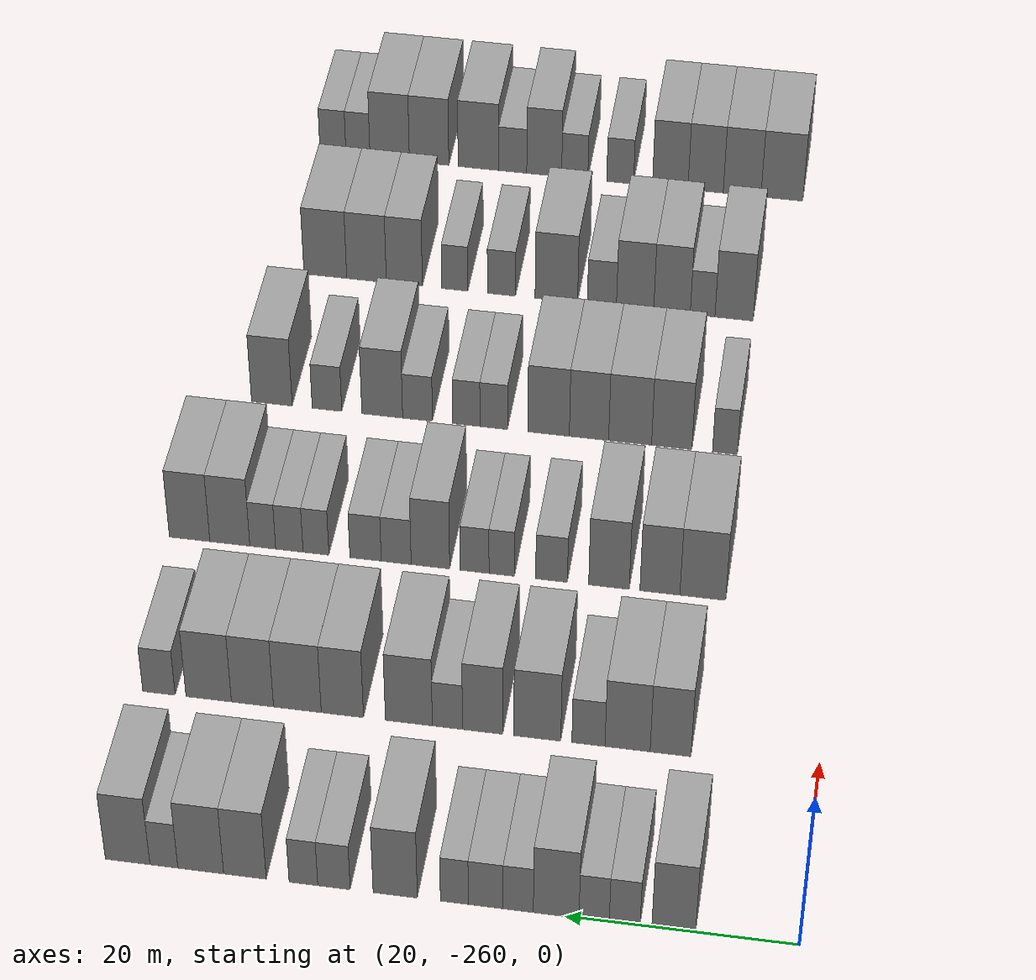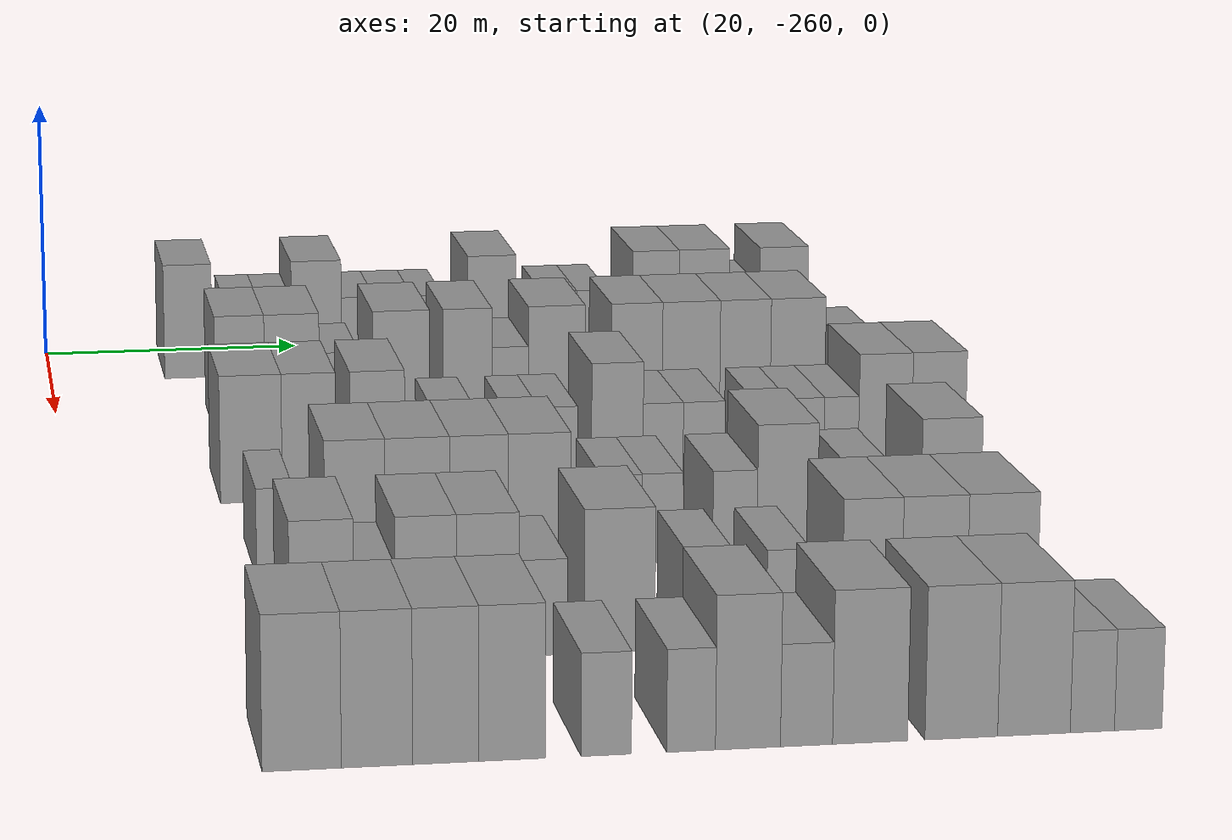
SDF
<sdf version="1.6">
 <world name="default">
  <model name="building_27">
   <static>1</static>
   <pose>25.0000 -249.2754 0 0.000000 0.000000 0.000000</pose>
   <link name="link">
    <pose>0 0 4.50 0 0 0</pose>
    <collision name="collision"><geometry><box><size>10.0000 3.7317 9.0000</size></box></geometry></collision>
    <visual name="visual">
     <cast_shadows>0</cast_shadows>
     <geometry><box><size>10.0000 3.7317 9.0000</size></box></geometry>
     <material>
      <script>
       <uri>model://grey_wall/materials/scripts</uri>
       <uri>model://grey_wall/materials/textures</uri>
       <name>vrc/grey_wall</name>
      </script>
     </material>
    </visual>
   </link>
  </model>
  <model name="building_28">
   <static>1</static>
   <pose>25.0000 -245.0887 0 0.000000 0.000000 0.000000</pose>
   <link name="link">
    <pose>0 0 3.00 0 0 0</pose>
    <collision name="collision"><geometry><box><size>10.0000 2.6416 6.0000</size></box></geometry></collision>
    <visual name="visual">
     <cast_shadows>0</cast_shadows>
     <geometry><box><size>10.0000 2.6416 6.0000</size></box></geometry>
     <material>
      <script>
       <uri>model://grey_wall/materials/scripts</uri>
       <uri>model://grey_wall/materials/textures</uri>
       <name>vrc/grey_wall</name>
      </script>
     </material>
    </visual>
   </link>
  </model>
  <model name="building_29">
   <static>1</static>
   <pose>25.0000 -242.4724 0 0.000000 0.000000 0.000000</pose>
   <link name="link">
    <pose>0 0 3.00 0 0 0</pose>
    <collision name="collision"><geometry><box><size>10.0000 2.5910 6.0000</size></box></geometry></collision>
    <visual name="visual">
     <cast_shadows>0</cast_shadows>
     <geometry><box><size>10.0000 2.5910 6.0000</size></box></geometry>
     <material>
      <script>
       <uri>model://grey_wall/materials/scripts</uri>
       <uri>model://grey_wall/materials/textures</uri>
       <name>vrc/grey_wall</name>
      </script>
     </material>
    </visual>
   </link>
  </model>
  <model name="building_30">
   <static>1</static>
   <pose>25.0000 -239.2148 0 0.000000 0.000000 0.000000</pose>
   <link name="link">
    <pose>0 0 4.50 0 0 0</pose>
    <collision name="collision"><geometry><box><size>10.0000 3.9242 9.0000</size></box></geometry></collision>
    <visual name="visual">
     <cast_shadows>0</cast_shadows>
     <geometry><box><size>10.0000 3.9242 9.0000</size></box></geometry>
     <material>
      <script>
       <uri>model://grey_wall/materials/scripts</uri>
       <uri>model://grey_wall/materials/textures</uri>
       <name>vrc/grey_wall</name>
      </script>
     </material>
    </visual>
   </link>
  </model>
  <model name="building_31">
   <static>1</static>
   <pose>25.0000 -235.9470 0 0.000000 0.000000 0.000000</pose>
   <link name="link">
    <pose>0 0 3.00 0 0 0</pose>
    <collision name="collision"><geometry><box><size>10.0000 2.6115 6.0000</size></box></geometry></collision>
    <visual name="visual">
     <cast_shadows>0</cast_shadows>
     <geometry><box><size>10.0000 2.6115 6.0000</size></box></geometry>
     <material>
      <script>
       <uri>model://grey_wall/materials/scripts</uri>
       <uri>model://grey_wall/materials/textures</uri>
       <name>vrc/grey_wall</name>
      </script>
     </material>
    </visual>
   </link>
  </model>
  <model name="building_32">
   <static>1</static>
   <pose>25.0000 -233.1449 0 0.000000 0.000000 0.000000</pose>
   <link name="link">
    <pose>0 0 3.00 0 0 0</pose>
    <collision name="collision"><geometry><box><size>10.0000 2.9928 6.0000</size></box></geometry></collision>
    <visual name="visual">
     <cast_shadows>0</cast_shadows>
     <geometry><box><size>10.0000 2.9928 6.0000</size></box></geometry>
     <material>
      <script>
       <uri>model://grey_wall/materials/scripts</uri>
       <uri>model://grey_wall/materials/textures</uri>
       <name>vrc/grey_wall</name>
      </script>
     </material>
    </visual>
   </link>
  </model>
  <model name="building_33">
   <static>1</static>
   <pose>25.0000 -230.4417 0 0.000000 0.000000 0.000000</pose>
   <link name="link">
    <pose>0 0 3.00 0 0 0</pose>
    <collision name="collision"><geometry><box><size>10.0000 2.4134 6.0000</size></box></geometry></collision>
    <visual name="visual">
     <cast_shadows>0</cast_shadows>
     <geometry><box><size>10.0000 2.4134 6.0000</size></box></geometry>
     <material>
      <script>
       <uri>model://grey_wall/materials/scripts</uri>
       <uri>model://grey_wall/materials/textures</uri>
       <name>vrc/grey_wall</name>
      </script>
     </material>
    </visual>
   </link>
  </model>
  <model name="building_34">
   <static>1</static>
   <pose>25.0000 -225.3167 0 0.000000 0.000000 0.000000</pose>
   <link name="link">
    <pose>0 0 4.50 0 0 0</pose>
    <collision name="collision"><geometry><box><size>10.0000 3.8365 9.0000</size></box></geometry></collision>
    <visual name="visual">
     <cast_shadows>0</cast_shadows>
     <geometry><box><size>10.0000 3.8365 9.0000</size></box></geometry>
     <material>
      <script>
       <uri>model://grey_wall/materials/scripts</uri>
       <uri>model://grey_wall/materials/textures</uri>
       <name>vrc/grey_wall</name>
      </script>
     </material>
    </visual>
   </link>
  </model>
  <model name="building_35">
   <static>1</static>
   <pose>25.0000 -219.9875 0 0.000000 0.000000 0.000000</pose>
   <link name="link">
    <pose>0 0 3.00 0 0 0</pose>
    <collision name="collision"><geometry><box><size>10.0000 2.8219 6.0000</size></box></geometry></collision>
    <visual name="visual">
     <cast_shadows>0</cast_shadows>
     <geometry><box><size>10.0000 2.8219 6.0000</size></box></geometry>
     <material>
      <script>
       <uri>model://grey_wall/materials/scripts</uri>
       <uri>model://grey_wall/materials/textures</uri>
       <name>vrc/grey_wall</name>
      </script>
     </material>
    </visual>
   </link>
  </model>
  <model name="building_36">
   <static>1</static>
   <pose>25.0000 -217.3249 0 0.000000 0.000000 0.000000</pose>
   <link name="link">
    <pose>0 0 3.00 0 0 0</pose>
    <collision name="collision"><geometry><box><size>10.0000 2.5034 6.0000</size></box></geometry></collision>
    <visual name="visual">
     <cast_shadows>0</cast_shadows>
     <geometry><box><size>10.0000 2.5034 6.0000</size></box></geometry>
     <material>
      <script>
       <uri>model://grey_wall/materials/scripts</uri>
       <uri>model://grey_wall/materials/textures</uri>
       <name>vrc/grey_wall</name>
      </script>
     </material>
    </visual>
   </link>
  </model>
  <model name="building_37">
   <static>1</static>
   <pose>25.0000 -212.2040 0 0.000000 0.000000 0.000000</pose>
   <link name="link">
    <pose>0 0 4.50 0 0 0</pose>
    <collision name="collision"><geometry><box><size>10.0000 3.7382 9.0000</size></box></geometry></collision>
    <visual name="visual">
     <cast_shadows>0</cast_shadows>
     <geometry><box><size>10.0000 3.7382 9.0000</size></box></geometry>
     <material>
      <script>
       <uri>model://grey_wall/materials/scripts</uri>
       <uri>model://grey_wall/materials/textures</uri>
       <name>vrc/grey_wall</name>
      </script>
     </material>
    </visual>
   </link>
  </model>
  <model name="building_38">
   <static>1</static>
   <pose>25.0000 -208.3201 0 0.000000 0.000000 0.000000</pose>
   <link name="link">
    <pose>0 0 4.50 0 0 0</pose>
    <collision name="collision"><geometry><box><size>10.0000 4.0297 9.0000</size></box></geometry></collision>
    <visual name="visual">
     <cast_shadows>0</cast_shadows>
     <geometry><box><size>10.0000 4.0297 9.0000</size></box></geometry>
     <material>
      <script>
       <uri>model://grey_wall/materials/scripts</uri>
       <uri>model://grey_wall/materials/textures</uri>
       <name>vrc/grey_wall</name>
      </script>
     </material>
    </visual>
   </link>
  </model>
  <model name="building_39">
   <static>1</static>
   <pose>25.0000 -205.0746 0 0.000000 0.000000 0.000000</pose>
   <link name="link">
    <pose>0 0 3.00 0 0 0</pose>
    <collision name="collision"><geometry><box><size>10.0000 2.4613 6.0000</size></box></geometry></collision>
    <visual name="visual">
     <cast_shadows>0</cast_shadows>
     <geometry><box><size>10.0000 2.4613 6.0000</size></box></geometry>
     <material>
      <script>
       <uri>model://grey_wall/materials/scripts</uri>
       <uri>model://grey_wall/materials/textures</uri>
       <name>vrc/grey_wall</name>
      </script>
     </material>
    </visual>
   </link>
  </model>
  <model name="building_40">
   <static>1</static>
   <pose>25.0000 -201.8766 0 0.000000 0.000000 0.000000</pose>
   <link name="link">
    <pose>0 0 4.50 0 0 0</pose>
    <collision name="collision"><geometry><box><size>10.0000 3.9346 9.0000</size></box></geometry></collision>
    <visual name="visual">
     <cast_shadows>0</cast_shadows>
     <geometry><box><size>10.0000 3.9346 9.0000</size></box></geometry>
     <material>
      <script>
       <uri>model://grey_wall/materials/scripts</uri>
       <uri>model://grey_wall/materials/textures</uri>
       <name>vrc/grey_wall</name>
      </script>
     </material>
    </visual>
   </link>
  </model>
  <model name="building_202">
   <static>1</static>
   <pose>44.0000 -246.7965 0 0.000000 0.000000 0.000000</pose>
   <link name="link">
    <pose>0 0 4.50 0 0 0</pose>
    <collision name="collision"><geometry><box><size>10.0000 3.6522 9.0000</size></box></geometry></collision>
    <visual name="visual">
     <cast_shadows>0</cast_shadows>
     <geometry><box><size>10.0000 3.6522 9.0000</size></box></geometry>
     <material>
      <script>
       <uri>model://grey_wall/materials/scripts</uri>
       <uri>model://grey_wall/materials/textures</uri>
       <name>vrc/grey_wall</name>
      </script>
     </material>
    </visual>
   </link>
  </model>
  <model name="building_203">
   <static>1</static>
   <pose>44.0000 -242.9457 0 0.000000 0.000000 0.000000</pose>
   <link name="link">
    <pose>0 0 4.50 0 0 0</pose>
    <collision name="collision"><geometry><box><size>10.0000 4.0494 9.0000</size></box></geometry></collision>
    <visual name="visual">
     <cast_shadows>0</cast_shadows>
     <geometry><box><size>10.0000 4.0494 9.0000</size></box></geometry>
     <material>
      <script>
       <uri>model://grey_wall/materials/scripts</uri>
       <uri>model://grey_wall/materials/textures</uri>
       <name>vrc/grey_wall</name>
      </script>
     </material>
    </visual>
   </link>
  </model>
  <model name="building_204">
   <static>1</static>
   <pose>44.0000 -239.4371 0 0.000000 0.000000 0.000000</pose>
   <link name="link">
    <pose>0 0 3.00 0 0 0</pose>
    <collision name="collision"><geometry><box><size>10.0000 2.9678 6.0000</size></box></geometry></collision>
    <visual name="visual">
     <cast_shadows>0</cast_shadows>
     <geometry><box><size>10.0000 2.9678 6.0000</size></box></geometry>
     <material>
      <script>
       <uri>model://grey_wall/materials/scripts</uri>
       <uri>model://grey_wall/materials/textures</uri>
       <name>vrc/grey_wall</name>
      </script>
     </material>
    </visual>
   </link>
  </model>
  <model name="building_205">
   <static>1</static>
   <pose>44.0000 -234.8391 0 0.000000 0.000000 0.000000</pose>
   <link name="link">
    <pose>0 0 4.50 0 0 0</pose>
    <collision name="collision"><geometry><box><size>10.0000 4.2283 9.0000</size></box></geometry></collision>
    <visual name="visual">
     <cast_shadows>0</cast_shadows>
     <geometry><box><size>10.0000 4.2283 9.0000</size></box></geometry>
     <material>
      <script>
       <uri>model://grey_wall/materials/scripts</uri>
       <uri>model://grey_wall/materials/textures</uri>
       <name>vrc/grey_wall</name>
      </script>
     </material>
    </visual>
   </link>
  </model>
  <model name="building_206">
   <static>1</static>
   <pose>44.0000 -229.9045 0 0.000000 0.000000 0.000000</pose>
   <link name="link">
    <pose>0 0 4.50 0 0 0</pose>
    <collision name="collision"><geometry><box><size>10.0000 3.6408 9.0000</size></box></geometry></collision>
    <visual name="visual">
     <cast_shadows>0</cast_shadows>
     <geometry><box><size>10.0000 3.6408 9.0000</size></box></geometry>
     <material>
      <script>
       <uri>model://grey_wall/materials/scripts</uri>
       <uri>model://grey_wall/materials/textures</uri>
       <name>vrc/grey_wall</name>
      </script>
     </material>
    </visual>
   </link>
  </model>
  <model name="building_207">
   <static>1</static>
   <pose>44.0000 -226.7147 0 0.000000 0.000000 0.000000</pose>
   <link name="link">
    <pose>0 0 3.00 0 0 0</pose>
    <collision name="collision"><geometry><box><size>10.0000 2.7388 6.0000</size></box></geometry></collision>
    <visual name="visual">
     <cast_shadows>0</cast_shadows>
     <geometry><box><size>10.0000 2.7388 6.0000</size></box></geometry>
     <material>
      <script>
       <uri>model://grey_wall/materials/scripts</uri>
       <uri>model://grey_wall/materials/textures</uri>
       <name>vrc/grey_wall</name>
      </script>
     </material>
    </visual>
   </link>
  </model>
  <model name="building_208">
   <static>1</static>
   <pose>44.0000 -223.2158 0 0.000000 0.000000 0.000000</pose>
   <link name="link">
    <pose>0 0 4.50 0 0 0</pose>
    <collision name="collision"><geometry><box><size>10.0000 4.2590 9.0000</size></box></geometry></collision>
    <visual name="visual">
     <cast_shadows>0</cast_shadows>
     <geometry><box><size>10.0000 4.2590 9.0000</size></box></geometry>
     <material>
      <script>
       <uri>model://grey_wall/materials/scripts</uri>
       <uri>model://grey_wall/materials/textures</uri>
       <name>vrc/grey_wall</name>
      </script>
     </material>
    </visual>
   </link>
  </model>
  <model name="building_209">
   <static>1</static>
   <pose>44.0000 -217.1549 0 0.000000 0.000000 0.000000</pose>
   <link name="link">
    <pose>0 0 4.50 0 0 0</pose>
    <collision name="collision"><geometry><box><size>10.0000 3.8627 9.0000</size></box></geometry></collision>
    <visual name="visual">
     <cast_shadows>0</cast_shadows>
     <geometry><box><size>10.0000 3.8627 9.0000</size></box></geometry>
     <material>
      <script>
       <uri>model://grey_wall/materials/scripts</uri>
       <uri>model://grey_wall/materials/textures</uri>
       <name>vrc/grey_wall</name>
      </script>
     </material>
    </visual>
   </link>
  </model>
  <model name="building_210">
   <static>1</static>
   <pose>44.0000 -213.0387 0 0.000000 0.000000 0.000000</pose>
   <link name="link">
    <pose>0 0 4.50 0 0 0</pose>
    <collision name="collision"><geometry><box><size>10.0000 4.3696 9.0000</size></box></geometry></collision>
    <visual name="visual">
     <cast_shadows>0</cast_shadows>
     <geometry><box><size>10.0000 4.3696 9.0000</size></box></geometry>
     <material>
      <script>
       <uri>model://grey_wall/materials/scripts</uri>
       <uri>model://grey_wall/materials/textures</uri>
       <name>vrc/grey_wall</name>
      </script>
     </material>
    </visual>
   </link>
  </model>
  <model name="building_211">
   <static>1</static>
   <pose>44.0000 -208.9217 0 0.000000 0.000000 0.000000</pose>
   <link name="link">
    <pose>0 0 4.50 0 0 0</pose>
    <collision name="collision"><geometry><box><size>10.0000 3.8645 9.0000</size></box></geometry></collision>
    <visual name="visual">
     <cast_shadows>0</cast_shadows>
     <geometry><box><size>10.0000 3.8645 9.0000</size></box></geometry>
     <material>
      <script>
       <uri>model://grey_wall/materials/scripts</uri>
       <uri>model://grey_wall/materials/textures</uri>
       <name>vrc/grey_wall</name>
      </script>
     </material>
    </visual>
   </link>
  </model>
  <model name="building_212">
   <static>1</static>
   <pose>44.0000 -204.8992 0 0.000000 0.000000 0.000000</pose>
   <link name="link">
    <pose>0 0 4.50 0 0 0</pose>
    <collision name="collision"><geometry><box><size>10.0000 4.1804 9.0000</size></box></geometry></collision>
    <visual name="visual">
     <cast_shadows>0</cast_shadows>
     <geometry><box><size>10.0000 4.1804 9.0000</size></box></geometry>
     <material>
      <script>
       <uri>model://grey_wall/materials/scripts</uri>
       <uri>model://grey_wall/materials/textures</uri>
       <name>vrc/grey_wall</name>
      </script>
     </material>
    </visual>
   </link>
  </model>
  <model name="building_213">
   <static>1</static>
   <pose>44.0000 -200.3142 0 0.000000 0.000000 0.000000</pose>
   <link name="link">
    <pose>0 0 3.00 0 0 0</pose>
    <collision name="collision"><geometry><box><size>10.0000 2.9898 6.0000</size></box></geometry></collision>
    <visual name="visual">
     <cast_shadows>0</cast_shadows>
     <geometry><box><size>10.0000 2.9898 6.0000</size></box></geometry>
     <material>
      <script>
       <uri>model://grey_wall/materials/scripts</uri>
       <uri>model://grey_wall/materials/textures</uri>
       <name>vrc/grey_wall</name>
      </script>
     </material>
    </visual>
   </link>
  </model>
  <model name="building_367">
   <static>1</static>
   <pose>63.0000 -247.5992 0 0.000000 0.000000 0.000000</pose>
   <link name="link">
    <pose>0 0 4.50 0 0 0</pose>
    <collision name="collision"><geometry><box><size>10.0000 4.2752 9.0000</size></box></geometry></collision>
    <visual name="visual">
     <cast_shadows>0</cast_shadows>
     <geometry><box><size>10.0000 4.2752 9.0000</size></box></geometry>
     <material>
      <script>
       <uri>model://grey_wall/materials/scripts</uri>
       <uri>model://grey_wall/materials/textures</uri>
       <name>vrc/grey_wall</name>
      </script>
     </material>
    </visual>
   </link>
  </model>
  <model name="building_368">
   <static>1</static>
   <pose>63.0000 -243.5945 0 0.000000 0.000000 0.000000</pose>
   <link name="link">
    <pose>0 0 4.50 0 0 0</pose>
    <collision name="collision"><geometry><box><size>10.0000 3.7342 9.0000</size></box></geometry></collision>
    <visual name="visual">
     <cast_shadows>0</cast_shadows>
     <geometry><box><size>10.0000 3.7342 9.0000</size></box></geometry>
     <material>
      <script>
       <uri>model://grey_wall/materials/scripts</uri>
       <uri>model://grey_wall/materials/textures</uri>
       <name>vrc/grey_wall</name>
      </script>
     </material>
    </visual>
   </link>
  </model>
  <model name="building_369">
   <static>1</static>
   <pose>63.0000 -238.8226 0 0.000000 0.000000 0.000000</pose>
   <link name="link">
    <pose>0 0 4.50 0 0 0</pose>
    <collision name="collision"><geometry><box><size>10.0000 3.8095 9.0000</size></box></geometry></collision>
    <visual name="visual">
     <cast_shadows>0</cast_shadows>
     <geometry><box><size>10.0000 3.8095 9.0000</size></box></geometry>
     <material>
      <script>
       <uri>model://grey_wall/materials/scripts</uri>
       <uri>model://grey_wall/materials/textures</uri>
       <name>vrc/grey_wall</name>
      </script>
     </material>
    </visual>
   </link>
  </model>
  <model name="building_370">
   <static>1</static>
   <pose>63.0000 -233.4251 0 0.000000 0.000000 0.000000</pose>
   <link name="link">
    <pose>0 0 3.00 0 0 0</pose>
    <collision name="collision"><geometry><box><size>10.0000 2.9855 6.0000</size></box></geometry></collision>
    <visual name="visual">
     <cast_shadows>0</cast_shadows>
     <geometry><box><size>10.0000 2.9855 6.0000</size></box></geometry>
     <material>
      <script>
       <uri>model://grey_wall/materials/scripts</uri>
       <uri>model://grey_wall/materials/textures</uri>
       <name>vrc/grey_wall</name>
      </script>
     </material>
    </visual>
   </link>
  </model>
  <model name="building_371">
   <static>1</static>
   <pose>63.0000 -228.7287 0 0.000000 0.000000 0.000000</pose>
   <link name="link">
    <pose>0 0 3.00 0 0 0</pose>
    <collision name="collision"><geometry><box><size>10.0000 2.4073 6.0000</size></box></geometry></collision>
    <visual name="visual">
     <cast_shadows>0</cast_shadows>
     <geometry><box><size>10.0000 2.4073 6.0000</size></box></geometry>
     <material>
      <script>
       <uri>model://grey_wall/materials/scripts</uri>
       <uri>model://grey_wall/materials/textures</uri>
       <name>vrc/grey_wall</name>
      </script>
     </material>
    </visual>
   </link>
  </model>
  <model name="building_372">
   <static>1</static>
   <pose>63.0000 -226.1645 0 0.000000 0.000000 0.000000</pose>
   <link name="link">
    <pose>0 0 3.00 0 0 0</pose>
    <collision name="collision"><geometry><box><size>10.0000 2.7211 6.0000</size></box></geometry></collision>
    <visual name="visual">
     <cast_shadows>0</cast_shadows>
     <geometry><box><size>10.0000 2.7211 6.0000</size></box></geometry>
     <material>
      <script>
       <uri>model://grey_wall/materials/scripts</uri>
       <uri>model://grey_wall/materials/textures</uri>
       <name>vrc/grey_wall</name>
      </script>
     </material>
    </visual>
   </link>
  </model>
  <model name="building_373">
   <static>1</static>
   <pose>63.0000 -221.9766 0 0.000000 0.000000 0.000000</pose>
   <link name="link">
    <pose>0 0 4.50 0 0 0</pose>
    <collision name="collision"><geometry><box><size>10.0000 3.6547 9.0000</size></box></geometry></collision>
    <visual name="visual">
     <cast_shadows>0</cast_shadows>
     <geometry><box><size>10.0000 3.6547 9.0000</size></box></geometry>
     <material>
      <script>
       <uri>model://grey_wall/materials/scripts</uri>
       <uri>model://grey_wall/materials/textures</uri>
       <name>vrc/grey_wall</name>
      </script>
     </material>
    </visual>
   </link>
  </model>
  <model name="building_374">
   <static>1</static>
   <pose>63.0000 -218.7250 0 0.000000 0.000000 0.000000</pose>
   <link name="link">
    <pose>0 0 3.00 0 0 0</pose>
    <collision name="collision"><geometry><box><size>10.0000 2.8484 6.0000</size></box></geometry></collision>
    <visual name="visual">
     <cast_shadows>0</cast_shadows>
     <geometry><box><size>10.0000 2.8484 6.0000</size></box></geometry>
     <material>
      <script>
       <uri>model://grey_wall/materials/scripts</uri>
       <uri>model://grey_wall/materials/textures</uri>
       <name>vrc/grey_wall</name>
      </script>
     </material>
    </visual>
   </link>
  </model>
  <model name="building_375">
   <static>1</static>
   <pose>63.0000 -215.8067 0 0.000000 0.000000 0.000000</pose>
   <link name="link">
    <pose>0 0 3.00 0 0 0</pose>
    <collision name="collision"><geometry><box><size>10.0000 2.9884 6.0000</size></box></geometry></collision>
    <visual name="visual">
     <cast_shadows>0</cast_shadows>
     <geometry><box><size>10.0000 2.9884 6.0000</size></box></geometry>
     <material>
      <script>
       <uri>model://grey_wall/materials/scripts</uri>
       <uri>model://grey_wall/materials/textures</uri>
       <name>vrc/grey_wall</name>
      </script>
     </material>
    </visual>
   </link>
  </model>
  <model name="building_376">
   <static>1</static>
   <pose>63.0000 -211.0759 0 0.000000 0.000000 0.000000</pose>
   <link name="link">
    <pose>0 0 3.00 0 0 0</pose>
    <collision name="collision"><geometry><box><size>10.0000 2.4731 6.0000</size></box></geometry></collision>
    <visual name="visual">
     <cast_shadows>0</cast_shadows>
     <geometry><box><size>10.0000 2.4731 6.0000</size></box></geometry>
     <material>
      <script>
       <uri>model://grey_wall/materials/scripts</uri>
       <uri>model://grey_wall/materials/textures</uri>
       <name>vrc/grey_wall</name>
      </script>
     </material>
    </visual>
   </link>
  </model>
  <model name="building_377">
   <static>1</static>
   <pose>63.0000 -208.5263 0 0.000000 0.000000 0.000000</pose>
   <link name="link">
    <pose>0 0 3.00 0 0 0</pose>
    <collision name="collision"><geometry><box><size>10.0000 2.6262 6.0000</size></box></geometry></collision>
    <visual name="visual">
     <cast_shadows>0</cast_shadows>
     <geometry><box><size>10.0000 2.6262 6.0000</size></box></geometry>
     <material>
      <script>
       <uri>model://grey_wall/materials/scripts</uri>
       <uri>model://grey_wall/materials/textures</uri>
       <name>vrc/grey_wall</name>
      </script>
     </material>
    </visual>
   </link>
  </model>
  <model name="building_378">
   <static>1</static>
   <pose>63.0000 -205.9750 0 0.000000 0.000000 0.000000</pose>
   <link name="link">
    <pose>0 0 3.00 0 0 0</pose>
    <collision name="collision"><geometry><box><size>10.0000 2.4762 6.0000</size></box></geometry></collision>
    <visual name="visual">
     <cast_shadows>0</cast_shadows>
     <geometry><box><size>10.0000 2.4762 6.0000</size></box></geometry>
     <material>
      <script>
       <uri>model://grey_wall/materials/scripts</uri>
       <uri>model://grey_wall/materials/textures</uri>
       <name>vrc/grey_wall</name>
      </script>
     </material>
    </visual>
   </link>
  </model>
  <model name="building_379">
   <static>1</static>
   <pose>63.0000 -202.8135 0 0.000000 0.000000 0.000000</pose>
   <link name="link">
    <pose>0 0 4.50 0 0 0</pose>
    <collision name="collision"><geometry><box><size>10.0000 3.8467 9.0000</size></box></geometry></collision>
    <visual name="visual">
     <cast_shadows>0</cast_shadows>
     <geometry><box><size>10.0000 3.8467 9.0000</size></box></geometry>
     <material>
      <script>
       <uri>model://grey_wall/materials/scripts</uri>
       <uri>model://grey_wall/materials/textures</uri>
       <name>vrc/grey_wall</name>
      </script>
     </material>
    </visual>
   </link>
  </model>
  <model name="building_380">
   <static>1</static>
   <pose>63.0000 -198.9438 0 0.000000 0.000000 0.000000</pose>
   <link name="link">
    <pose>0 0 4.50 0 0 0</pose>
    <collision name="collision"><geometry><box><size>10.0000 3.8928 9.0000</size></box></geometry></collision>
    <visual name="visual">
     <cast_shadows>0</cast_shadows>
     <geometry><box><size>10.0000 3.8928 9.0000</size></box></geometry>
     <material>
      <script>
       <uri>model://grey_wall/materials/scripts</uri>
       <uri>model://grey_wall/materials/textures</uri>
       <name>vrc/grey_wall</name>
      </script>
     </material>
    </visual>
   </link>
  </model>
  <model name="building_546">
   <static>1</static>
   <pose>82.0000 -247.6705 0 0.000000 0.000000 0.000000</pose>
   <link name="link">
    <pose>0 0 3.00 0 0 0</pose>
    <collision name="collision"><geometry><box><size>10.0000 2.4222 6.0000</size></box></geometry></collision>
    <visual name="visual">
     <cast_shadows>0</cast_shadows>
     <geometry><box><size>10.0000 2.4222 6.0000</size></box></geometry>
     <material>
      <script>
       <uri>model://grey_wall/materials/scripts</uri>
       <uri>model://grey_wall/materials/textures</uri>
       <name>vrc/grey_wall</name>
      </script>
     </material>
    </visual>
   </link>
  </model>
  <model name="building_547">
   <static>1</static>
   <pose>82.0000 -242.4932 0 0.000000 0.000000 0.000000</pose>
   <link name="link">
    <pose>0 0 4.50 0 0 0</pose>
    <collision name="collision"><geometry><box><size>10.0000 3.9324 9.0000</size></box></geometry></collision>
    <visual name="visual">
     <cast_shadows>0</cast_shadows>
     <geometry><box><size>10.0000 3.9324 9.0000</size></box></geometry>
     <material>
      <script>
       <uri>model://grey_wall/materials/scripts</uri>
       <uri>model://grey_wall/materials/textures</uri>
       <name>vrc/grey_wall</name>
      </script>
     </material>
    </visual>
   </link>
  </model>
  <model name="building_548">
   <static>1</static>
   <pose>82.0000 -238.4257 0 0.000000 0.000000 0.000000</pose>
   <link name="link">
    <pose>0 0 4.50 0 0 0</pose>
    <collision name="collision"><geometry><box><size>10.0000 4.2026 9.0000</size></box></geometry></collision>
    <visual name="visual">
     <cast_shadows>0</cast_shadows>
     <geometry><box><size>10.0000 4.2026 9.0000</size></box></geometry>
     <material>
      <script>
       <uri>model://grey_wall/materials/scripts</uri>
       <uri>model://grey_wall/materials/textures</uri>
       <name>vrc/grey_wall</name>
      </script>
     </material>
    </visual>
   </link>
  </model>
  <model name="building_549">
   <static>1</static>
   <pose>82.0000 -234.3999 0 0.000000 0.000000 0.000000</pose>
   <link name="link">
    <pose>0 0 4.50 0 0 0</pose>
    <collision name="collision"><geometry><box><size>10.0000 3.8489 9.0000</size></box></geometry></collision>
    <visual name="visual">
     <cast_shadows>0</cast_shadows>
     <geometry><box><size>10.0000 3.8489 9.0000</size></box></geometry>
     <material>
      <script>
       <uri>model://grey_wall/materials/scripts</uri>
       <uri>model://grey_wall/materials/textures</uri>
       <name>vrc/grey_wall</name>
      </script>
     </material>
    </visual>
   </link>
  </model>
  <model name="building_550">
   <static>1</static>
   <pose>82.0000 -230.4365 0 0.000000 0.000000 0.000000</pose>
   <link name="link">
    <pose>0 0 4.50 0 0 0</pose>
    <collision name="collision"><geometry><box><size>10.0000 4.0778 9.0000</size></box></geometry></collision>
    <visual name="visual">
     <cast_shadows>0</cast_shadows>
     <geometry><box><size>10.0000 4.0778 9.0000</size></box></geometry>
     <material>
      <script>
       <uri>model://grey_wall/materials/scripts</uri>
       <uri>model://grey_wall/materials/textures</uri>
       <name>vrc/grey_wall</name>
      </script>
     </material>
    </visual>
   </link>
  </model>
  <model name="building_551">
   <static>1</static>
   <pose>82.0000 -225.0351 0 0.000000 0.000000 0.000000</pose>
   <link name="link">
    <pose>0 0 3.00 0 0 0</pose>
    <collision name="collision"><geometry><box><size>10.0000 2.7250 6.0000</size></box></geometry></collision>
    <visual name="visual">
     <cast_shadows>0</cast_shadows>
     <geometry><box><size>10.0000 2.7250 6.0000</size></box></geometry>
     <material>
      <script>
       <uri>model://grey_wall/materials/scripts</uri>
       <uri>model://grey_wall/materials/textures</uri>
       <name>vrc/grey_wall</name>
      </script>
     </material>
    </visual>
   </link>
  </model>
  <model name="building_552">
   <static>1</static>
   <pose>82.0000 -222.3273 0 0.000000 0.000000 0.000000</pose>
   <link name="link">
    <pose>0 0 3.00 0 0 0</pose>
    <collision name="collision"><geometry><box><size>10.0000 2.6908 6.0000</size></box></geometry></collision>
    <visual name="visual">
     <cast_shadows>0</cast_shadows>
     <geometry><box><size>10.0000 2.6908 6.0000</size></box></geometry>
     <material>
      <script>
       <uri>model://grey_wall/materials/scripts</uri>
       <uri>model://grey_wall/materials/textures</uri>
       <name>vrc/grey_wall</name>
      </script>
     </material>
    </visual>
   </link>
  </model>
  <model name="building_553">
   <static>1</static>
   <pose>82.0000 -217.5042 0 0.000000 0.000000 0.000000</pose>
   <link name="link">
    <pose>0 0 3.00 0 0 0</pose>
    <collision name="collision"><geometry><box><size>10.0000 2.9554 6.0000</size></box></geometry></collision>
    <visual name="visual">
     <cast_shadows>0</cast_shadows>
     <geometry><box><size>10.0000 2.9554 6.0000</size></box></geometry>
     <material>
      <script>
       <uri>model://grey_wall/materials/scripts</uri>
       <uri>model://grey_wall/materials/textures</uri>
       <name>vrc/grey_wall</name>
      </script>
     </material>
    </visual>
   </link>
  </model>
  <model name="building_554">
   <static>1</static>
   <pose>82.0000 -214.0004 0 0.000000 0.000000 0.000000</pose>
   <link name="link">
    <pose>0 0 4.50 0 0 0</pose>
    <collision name="collision"><geometry><box><size>10.0000 4.0522 9.0000</size></box></geometry></collision>
    <visual name="visual">
     <cast_shadows>0</cast_shadows>
     <geometry><box><size>10.0000 4.0522 9.0000</size></box></geometry>
     <material>
      <script>
       <uri>model://grey_wall/materials/scripts</uri>
       <uri>model://grey_wall/materials/textures</uri>
       <name>vrc/grey_wall</name>
      </script>
     </material>
    </visual>
   </link>
  </model>
  <model name="building_555">
   <static>1</static>
   <pose>82.0000 -208.5017 0 0.000000 0.000000 0.000000</pose>
   <link name="link">
    <pose>0 0 3.00 0 0 0</pose>
    <collision name="collision"><geometry><box><size>10.0000 2.9451 6.0000</size></box></geometry></collision>
    <visual name="visual">
     <cast_shadows>0</cast_shadows>
     <geometry><box><size>10.0000 2.9451 6.0000</size></box></geometry>
     <material>
      <script>
       <uri>model://grey_wall/materials/scripts</uri>
       <uri>model://grey_wall/materials/textures</uri>
       <name>vrc/grey_wall</name>
      </script>
     </material>
    </visual>
   </link>
  </model>
  <model name="building_556">
   <static>1</static>
   <pose>82.0000 -202.9977 0 0.000000 0.000000 0.000000</pose>
   <link name="link">
    <pose>0 0 4.50 0 0 0</pose>
    <collision name="collision"><geometry><box><size>10.0000 4.0630 9.0000</size></box></geometry></collision>
    <visual name="visual">
     <cast_shadows>0</cast_shadows>
     <geometry><box><size>10.0000 4.0630 9.0000</size></box></geometry>
     <material>
      <script>
       <uri>model://grey_wall/materials/scripts</uri>
       <uri>model://grey_wall/materials/textures</uri>
       <name>vrc/grey_wall</name>
      </script>
     </material>
    </visual>
   </link>
  </model>
  <model name="building_722">
   <static>1</static>
   <pose>101.0000 -246.6048 0 0.000000 0.000000 0.000000</pose>
   <link name="link">
    <pose>0 0 4.50 0 0 0</pose>
    <collision name="collision"><geometry><box><size>10.0000 3.8644 9.0000</size></box></geometry></collision>
    <visual name="visual">
     <cast_shadows>0</cast_shadows>
     <geometry><box><size>10.0000 3.8644 9.0000</size></box></geometry>
     <material>
      <script>
       <uri>model://grey_wall/materials/scripts</uri>
       <uri>model://grey_wall/materials/textures</uri>
       <name>vrc/grey_wall</name>
      </script>
     </material>
    </visual>
   </link>
  </model>
  <model name="building_723">
   <static>1</static>
   <pose>101.0000 -243.4198 0 0.000000 0.000000 0.000000</pose>
   <link name="link">
    <pose>0 0 3.00 0 0 0</pose>
    <collision name="collision"><geometry><box><size>10.0000 2.5055 6.0000</size></box></geometry></collision>
    <visual name="visual">
     <cast_shadows>0</cast_shadows>
     <geometry><box><size>10.0000 2.5055 6.0000</size></box></geometry>
     <material>
      <script>
       <uri>model://grey_wall/materials/scripts</uri>
       <uri>model://grey_wall/materials/textures</uri>
       <name>vrc/grey_wall</name>
      </script>
     </material>
    </visual>
   </link>
  </model>
  <model name="building_724">
   <static>1</static>
   <pose>101.0000 -240.3123 0 0.000000 0.000000 0.000000</pose>
   <link name="link">
    <pose>0 0 4.50 0 0 0</pose>
    <collision name="collision"><geometry><box><size>10.0000 3.7096 9.0000</size></box></geometry></collision>
    <visual name="visual">
     <cast_shadows>0</cast_shadows>
     <geometry><box><size>10.0000 3.7096 9.0000</size></box></geometry>
     <material>
      <script>
       <uri>model://grey_wall/materials/scripts</uri>
       <uri>model://grey_wall/materials/textures</uri>
       <name>vrc/grey_wall</name>
      </script>
     </material>
    </visual>
   </link>
  </model>
  <model name="building_725">
   <static>1</static>
   <pose>101.0000 -236.5567 0 0.000000 0.000000 0.000000</pose>
   <link name="link">
    <pose>0 0 4.50 0 0 0</pose>
    <collision name="collision"><geometry><box><size>10.0000 3.8016 9.0000</size></box></geometry></collision>
    <visual name="visual">
     <cast_shadows>0</cast_shadows>
     <geometry><box><size>10.0000 3.8016 9.0000</size></box></geometry>
     <material>
      <script>
       <uri>model://grey_wall/materials/scripts</uri>
       <uri>model://grey_wall/materials/textures</uri>
       <name>vrc/grey_wall</name>
      </script>
     </material>
    </visual>
   </link>
  </model>
  <model name="building_726">
   <static>1</static>
   <pose>101.0000 -233.1750 0 0.000000 0.000000 0.000000</pose>
   <link name="link">
    <pose>0 0 3.00 0 0 0</pose>
    <collision name="collision"><geometry><box><size>10.0000 2.9618 6.0000</size></box></geometry></collision>
    <visual name="visual">
     <cast_shadows>0</cast_shadows>
     <geometry><box><size>10.0000 2.9618 6.0000</size></box></geometry>
     <material>
      <script>
       <uri>model://grey_wall/materials/scripts</uri>
       <uri>model://grey_wall/materials/textures</uri>
       <name>vrc/grey_wall</name>
      </script>
     </material>
    </visual>
   </link>
  </model>
  <model name="building_727">
   <static>1</static>
   <pose>101.0000 -228.5203 0 0.000000 0.000000 0.000000</pose>
   <link name="link">
    <pose>0 0 4.50 0 0 0</pose>
    <collision name="collision"><geometry><box><size>10.0000 4.3475 9.0000</size></box></geometry></collision>
    <visual name="visual">
     <cast_shadows>0</cast_shadows>
     <geometry><box><size>10.0000 4.3475 9.0000</size></box></geometry>
     <material>
      <script>
       <uri>model://grey_wall/materials/scripts</uri>
       <uri>model://grey_wall/materials/textures</uri>
       <name>vrc/grey_wall</name>
      </script>
     </material>
    </visual>
   </link>
  </model>
  <model name="building_728">
   <static>1</static>
   <pose>101.0000 -222.8981 0 0.000000 0.000000 0.000000</pose>
   <link name="link">
    <pose>0 0 3.00 0 0 0</pose>
    <collision name="collision"><geometry><box><size>10.0000 2.8969 6.0000</size></box></geometry></collision>
    <visual name="visual">
     <cast_shadows>0</cast_shadows>
     <geometry><box><size>10.0000 2.8969 6.0000</size></box></geometry>
     <material>
      <script>
       <uri>model://grey_wall/materials/scripts</uri>
       <uri>model://grey_wall/materials/textures</uri>
       <name>vrc/grey_wall</name>
      </script>
     </material>
    </visual>
   </link>
  </model>
  <model name="building_729">
   <static>1</static>
   <pose>101.0000 -218.1016 0 0.000000 0.000000 0.000000</pose>
   <link name="link">
    <pose>0 0 3.00 0 0 0</pose>
    <collision name="collision"><geometry><box><size>10.0000 2.6963 6.0000</size></box></geometry></collision>
    <visual name="visual">
     <cast_shadows>0</cast_shadows>
     <geometry><box><size>10.0000 2.6963 6.0000</size></box></geometry>
     <material>
      <script>
       <uri>model://grey_wall/materials/scripts</uri>
       <uri>model://grey_wall/materials/textures</uri>
       <name>vrc/grey_wall</name>
      </script>
     </material>
    </visual>
   </link>
  </model>
  <model name="building_730">
   <static>1</static>
   <pose>101.0000 -212.8890 0 0.000000 0.000000 0.000000</pose>
   <link name="link">
    <pose>0 0 4.50 0 0 0</pose>
    <collision name="collision"><geometry><box><size>10.0000 3.7288 9.0000</size></box></geometry></collision>
    <visual name="visual">
     <cast_shadows>0</cast_shadows>
     <geometry><box><size>10.0000 3.7288 9.0000</size></box></geometry>
     <material>
      <script>
       <uri>model://grey_wall/materials/scripts</uri>
       <uri>model://grey_wall/materials/textures</uri>
       <name>vrc/grey_wall</name>
      </script>
     </material>
    </visual>
   </link>
  </model>
  <model name="building_731">
   <static>1</static>
   <pose>101.0000 -208.9734 0 0.000000 0.000000 0.000000</pose>
   <link name="link">
    <pose>0 0 4.50 0 0 0</pose>
    <collision name="collision"><geometry><box><size>10.0000 4.1023 9.0000</size></box></geometry></collision>
    <visual name="visual">
     <cast_shadows>0</cast_shadows>
     <geometry><box><size>10.0000 4.1023 9.0000</size></box></geometry>
     <material>
      <script>
       <uri>model://grey_wall/materials/scripts</uri>
       <uri>model://grey_wall/materials/textures</uri>
       <name>vrc/grey_wall</name>
      </script>
     </material>
    </visual>
   </link>
  </model>
  <model name="building_732">
   <static>1</static>
   <pose>101.0000 -204.7044 0 0.000000 0.000000 0.000000</pose>
   <link name="link">
    <pose>0 0 4.50 0 0 0</pose>
    <collision name="collision"><geometry><box><size>10.0000 4.4357 9.0000</size></box></geometry></collision>
    <visual name="visual">
     <cast_shadows>0</cast_shadows>
     <geometry><box><size>10.0000 4.4357 9.0000</size></box></geometry>
     <material>
      <script>
       <uri>model://grey_wall/materials/scripts</uri>
       <uri>model://grey_wall/materials/textures</uri>
       <name>vrc/grey_wall</name>
      </script>
     </material>
    </visual>
   </link>
  </model>
  <model name="building_889">
   <static>1</static>
   <pose>120.0000 -249.6788 0 0.000000 0.000000 0.000000</pose>
   <link name="link">
    <pose>0 0 4.50 0 0 0</pose>
    <collision name="collision"><geometry><box><size>10.0000 4.3957 9.0000</size></box></geometry></collision>
    <visual name="visual">
     <cast_shadows>0</cast_shadows>
     <geometry><box><size>10.0000 4.3957 9.0000</size></box></geometry>
     <material>
      <script>
       <uri>model://grey_wall/materials/scripts</uri>
       <uri>model://grey_wall/materials/textures</uri>
       <name>vrc/grey_wall</name>
      </script>
     </material>
    </visual>
   </link>
  </model>
  <model name="building_890">
   <static>1</static>
   <pose>120.0000 -245.4952 0 0.000000 0.000000 0.000000</pose>
   <link name="link">
    <pose>0 0 4.50 0 0 0</pose>
    <collision name="collision"><geometry><box><size>10.0000 3.9716 9.0000</size></box></geometry></collision>
    <visual name="visual">
     <cast_shadows>0</cast_shadows>
     <geometry><box><size>10.0000 3.9716 9.0000</size></box></geometry>
     <material>
      <script>
       <uri>model://grey_wall/materials/scripts</uri>
       <uri>model://grey_wall/materials/textures</uri>
       <name>vrc/grey_wall</name>
      </script>
     </material>
    </visual>
   </link>
  </model>
  <model name="building_891">
   <static>1</static>
   <pose>120.0000 -241.6517 0 0.000000 0.000000 0.000000</pose>
   <link name="link">
    <pose>0 0 4.50 0 0 0</pose>
    <collision name="collision"><geometry><box><size>10.0000 3.7154 9.0000</size></box></geometry></collision>
    <visual name="visual">
     <cast_shadows>0</cast_shadows>
     <geometry><box><size>10.0000 3.7154 9.0000</size></box></geometry>
     <material>
      <script>
       <uri>model://grey_wall/materials/scripts</uri>
       <uri>model://grey_wall/materials/textures</uri>
       <name>vrc/grey_wall</name>
      </script>
     </material>
    </visual>
   </link>
  </model>
  <model name="building_892">
   <static>1</static>
   <pose>120.0000 -237.9183 0 0.000000 0.000000 0.000000</pose>
   <link name="link">
    <pose>0 0 4.50 0 0 0</pose>
    <collision name="collision"><geometry><box><size>10.0000 3.7513 9.0000</size></box></geometry></collision>
    <visual name="visual">
     <cast_shadows>0</cast_shadows>
     <geometry><box><size>10.0000 3.7513 9.0000</size></box></geometry>
     <material>
      <script>
       <uri>model://grey_wall/materials/scripts</uri>
       <uri>model://grey_wall/materials/textures</uri>
       <name>vrc/grey_wall</name>
      </script>
     </material>
    </visual>
   </link>
  </model>
  <model name="building_893">
   <static>1</static>
   <pose>120.0000 -232.6178 0 0.000000 0.000000 0.000000</pose>
   <link name="link">
    <pose>0 0 3.00 0 0 0</pose>
    <collision name="collision"><geometry><box><size>10.0000 2.8497 6.0000</size></box></geometry></collision>
    <visual name="visual">
     <cast_shadows>0</cast_shadows>
     <geometry><box><size>10.0000 2.8497 6.0000</size></box></geometry>
     <material>
      <script>
       <uri>model://grey_wall/materials/scripts</uri>
       <uri>model://grey_wall/materials/textures</uri>
       <name>vrc/grey_wall</name>
      </script>
     </material>
    </visual>
   </link>
  </model>
  <model name="building_894">
   <static>1</static>
   <pose>120.0000 -227.8016 0 0.000000 0.000000 0.000000</pose>
   <link name="link">
    <pose>0 0 3.00 0 0 0</pose>
    <collision name="collision"><geometry><box><size>10.0000 2.7826 6.0000</size></box></geometry></collision>
    <visual name="visual">
     <cast_shadows>0</cast_shadows>
     <geometry><box><size>10.0000 2.7826 6.0000</size></box></geometry>
     <material>
      <script>
       <uri>model://grey_wall/materials/scripts</uri>
       <uri>model://grey_wall/materials/textures</uri>
       <name>vrc/grey_wall</name>
      </script>
     </material>
    </visual>
   </link>
  </model>
  <model name="building_895">
   <static>1</static>
   <pose>120.0000 -224.5502 0 0.000000 0.000000 0.000000</pose>
   <link name="link">
    <pose>0 0 4.50 0 0 0</pose>
    <collision name="collision"><geometry><box><size>10.0000 3.7203 9.0000</size></box></geometry></collision>
    <visual name="visual">
     <cast_shadows>0</cast_shadows>
     <geometry><box><size>10.0000 3.7203 9.0000</size></box></geometry>
     <material>
      <script>
       <uri>model://grey_wall/materials/scripts</uri>
       <uri>model://grey_wall/materials/textures</uri>
       <name>vrc/grey_wall</name>
      </script>
     </material>
    </visual>
   </link>
  </model>
  <model name="building_896">
   <static>1</static>
   <pose>120.0000 -221.1931 0 0.000000 0.000000 0.000000</pose>
   <link name="link">
    <pose>0 0 3.00 0 0 0</pose>
    <collision name="collision"><geometry><box><size>10.0000 2.9938 6.0000</size></box></geometry></collision>
    <visual name="visual">
     <cast_shadows>0</cast_shadows>
     <geometry><box><size>10.0000 2.9938 6.0000</size></box></geometry>
     <material>
      <script>
       <uri>model://grey_wall/materials/scripts</uri>
       <uri>model://grey_wall/materials/textures</uri>
       <name>vrc/grey_wall</name>
      </script>
     </material>
    </visual>
   </link>
  </model>
  <model name="building_897">
   <static>1</static>
   <pose>120.0000 -217.5289 0 0.000000 0.000000 0.000000</pose>
   <link name="link">
    <pose>0 0 4.50 0 0 0</pose>
    <collision name="collision"><geometry><box><size>10.0000 4.3346 9.0000</size></box></geometry></collision>
    <visual name="visual">
     <cast_shadows>0</cast_shadows>
     <geometry><box><size>10.0000 4.3346 9.0000</size></box></geometry>
     <material>
      <script>
       <uri>model://grey_wall/materials/scripts</uri>
       <uri>model://grey_wall/materials/textures</uri>
       <name>vrc/grey_wall</name>
      </script>
     </material>
    </visual>
   </link>
  </model>
  <model name="building_898">
   <static>1</static>
   <pose>120.0000 -212.2460 0 0.000000 0.000000 0.000000</pose>
   <link name="link">
    <pose>0 0 4.50 0 0 0</pose>
    <collision name="collision"><geometry><box><size>10.0000 4.2312 9.0000</size></box></geometry></collision>
    <visual name="visual">
     <cast_shadows>0</cast_shadows>
     <geometry><box><size>10.0000 4.2312 9.0000</size></box></geometry>
     <material>
      <script>
       <uri>model://grey_wall/materials/scripts</uri>
       <uri>model://grey_wall/materials/textures</uri>
       <name>vrc/grey_wall</name>
      </script>
     </material>
    </visual>
   </link>
  </model>
  <model name="building_899">
   <static>1</static>
   <pose>120.0000 -208.0103 0 0.000000 0.000000 0.000000</pose>
   <link name="link">
    <pose>0 0 4.50 0 0 0</pose>
    <collision name="collision"><geometry><box><size>10.0000 4.2401 9.0000</size></box></geometry></collision>
    <visual name="visual">
     <cast_shadows>0</cast_shadows>
     <geometry><box><size>10.0000 4.2401 9.0000</size></box></geometry>
     <material>
      <script>
       <uri>model://grey_wall/materials/scripts</uri>
       <uri>model://grey_wall/materials/textures</uri>
       <name>vrc/grey_wall</name>
      </script>
     </material>
    </visual>
   </link>
  </model>
  <model name="building_900">
   <static>1</static>
   <pose>120.0000 -204.5917 0 0.000000 0.000000 0.000000</pose>
   <link name="link">
    <pose>0 0 3.00 0 0 0</pose>
    <collision name="collision"><geometry><box><size>10.0000 2.5970 6.0000</size></box></geometry></collision>
    <visual name="visual">
     <cast_shadows>0</cast_shadows>
     <geometry><box><size>10.0000 2.5970 6.0000</size></box></geometry>
     <material>
      <script>
       <uri>model://grey_wall/materials/scripts</uri>
       <uri>model://grey_wall/materials/textures</uri>
       <name>vrc/grey_wall</name>
      </script>
     </material>
    </visual>
   </link>
  </model>
  <model name="building_901">
   <static>1</static>
   <pose>120.0000 -201.8953 0 0.000000 0.000000 0.000000</pose>
   <link name="link">
    <pose>0 0 3.00 0 0 0</pose>
    <collision name="collision"><geometry><box><size>10.0000 2.7958 6.0000</size></box></geometry></collision>
    <visual name="visual">
     <cast_shadows>0</cast_shadows>
     <geometry><box><size>10.0000 2.7958 6.0000</size></box></geometry>
     <material>
      <script>
       <uri>model://grey_wall/materials/scripts</uri>
       <uri>model://grey_wall/materials/textures</uri>
       <name>vrc/grey_wall</name>
      </script>
     </material>
    </visual>
   </link>
  </model>
 </world>
</sdf>
